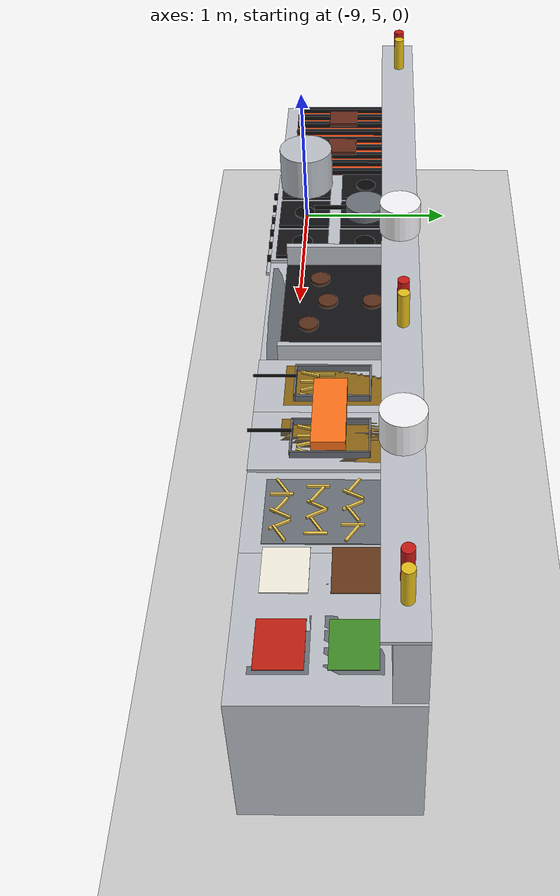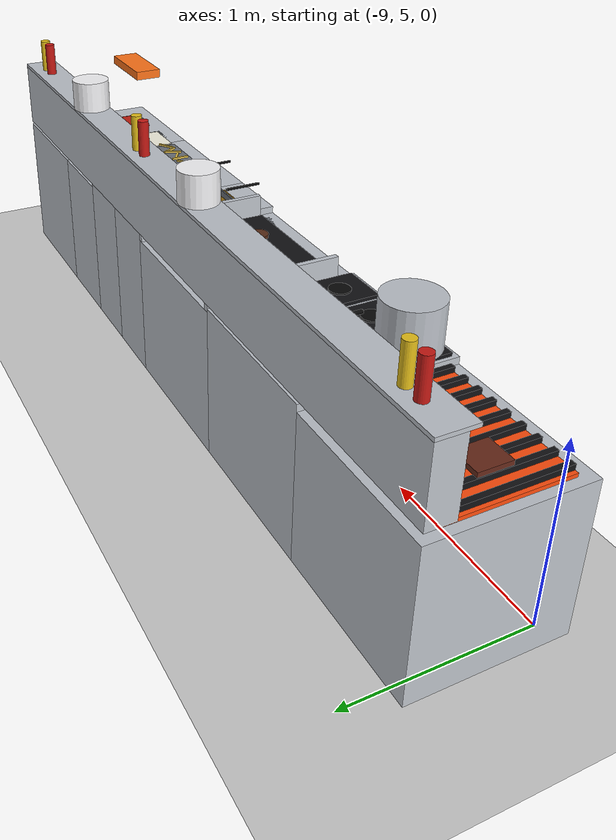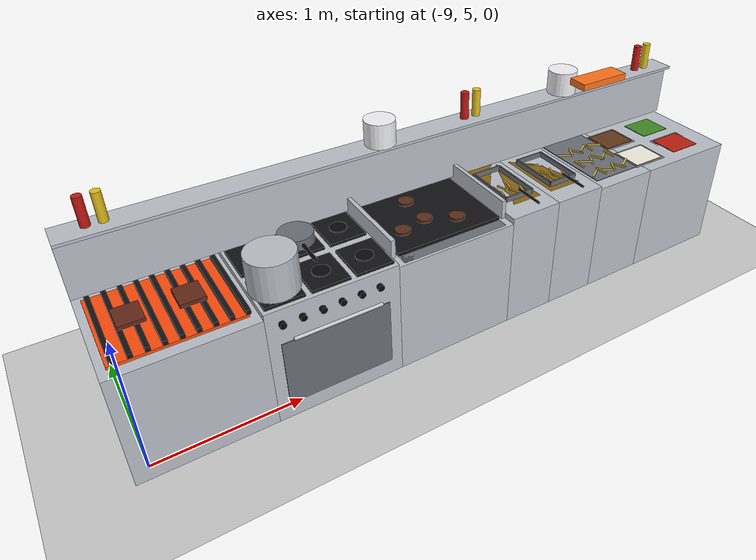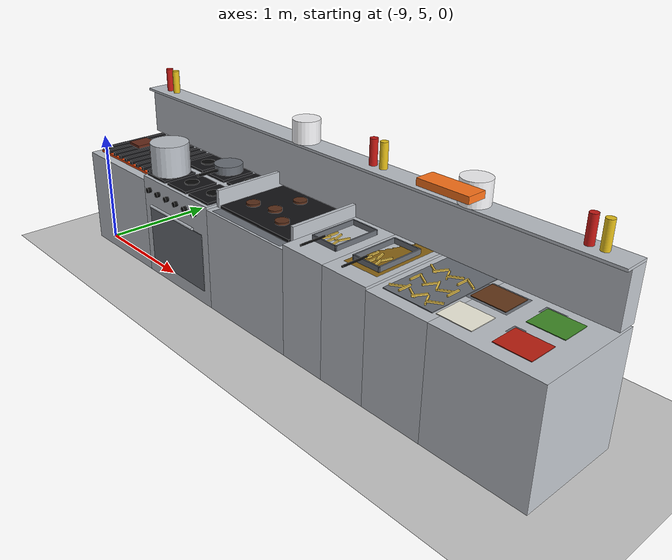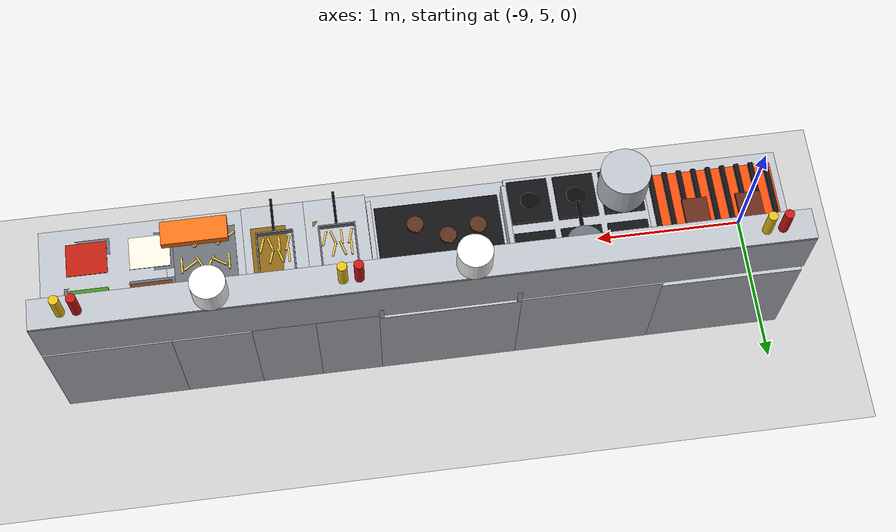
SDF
<sdf version="1.7">
 <world name="default">
  <model name="ground_plane">
   <static>1</static>
   <link name="link">
    <collision name="collision">
     <geometry><plane><normal>0 0 1</normal><size>100 100</size></plane></geometry>
     <surface><friction><ode><mu>100</mu><mu2>50</mu2></ode></friction></surface>
    </collision>
    <visual name="visual">
     <cast_shadows>0</cast_shadows>
     <geometry><plane><normal>0 0 1</normal><size>100 100</size></plane></geometry>
     <material>
      <script><uri>file://media/materials/scripts/gazebo.material</uri><name>Gazebo/Grey</name></script>
     </material>
    </visual>
   </link>
  </model>
  <model name="tunibot_layout">
   <static>1</static>
   <link name="k_line">
    <collision name="k_line_c0">
     <pose>-6.7 5.325 0.45 0 0 0</pose>
     <geometry><box><size>4.8 0.850 0.9</size></box></geometry>
    </collision>
    <visual name="k_line_v0">
     <pose>-8.650 5.325 0.420 0 0 0.0000</pose>
     <geometry><box><size>0.900 0.850 0.840</size></box></geometry>
     <material>
      <ambient>0.44 0.46 0.47 1</ambient>
      <diffuse>0.74 0.76 0.79 1</diffuse>
      <specular>0.70 0.70 0.70 1</specular>
     </material>
    </visual>
    <visual name="k_line_v1">
     <pose>-8.650 5.305 0.850 0 0 0.0000</pose>
     <geometry><box><size>0.800 0.650 0.020</size></box></geometry>
     <material>
      <ambient>0.60 0.18 0.03 1</ambient>
      <diffuse>1.00 0.30 0.05 1</diffuse>
      <specular>0.15 0.15 0.15 1</specular>
      <emissive>0.90 0.22 0.02 1</emissive>
     </material>
    </visual>
    <visual name="k_line_v2">
     <pose>-9.015 5.305 0.875 0 0 0.0000</pose>
     <geometry><box><size>0.030 0.650 0.030</size></box></geometry>
     <material>
      <ambient>0.04 0.04 0.05 1</ambient>
      <diffuse>0.07 0.07 0.08 1</diffuse>
      <specular>0.15 0.15 0.15 1</specular>
     </material>
    </visual>
    <visual name="k_line_v3">
     <pose>-8.920 5.305 0.875 0 0 0.0000</pose>
     <geometry><box><size>0.030 0.650 0.030</size></box></geometry>
     <material>
      <ambient>0.04 0.04 0.05 1</ambient>
      <diffuse>0.07 0.07 0.08 1</diffuse>
      <specular>0.15 0.15 0.15 1</specular>
     </material>
    </visual>
    <visual name="k_line_v4">
     <pose>-8.825 5.305 0.875 0 0 0.0000</pose>
     <geometry><box><size>0.030 0.650 0.030</size></box></geometry>
     <material>
      <ambient>0.04 0.04 0.05 1</ambient>
      <diffuse>0.07 0.07 0.08 1</diffuse>
      <specular>0.15 0.15 0.15 1</specular>
     </material>
    </visual>
    <visual name="k_line_v5">
     <pose>-8.730 5.305 0.875 0 0 0.0000</pose>
     <geometry><box><size>0.030 0.650 0.030</size></box></geometry>
     <material>
      <ambient>0.04 0.04 0.05 1</ambient>
      <diffuse>0.07 0.07 0.08 1</diffuse>
      <specular>0.15 0.15 0.15 1</specular>
     </material>
    </visual>
    <visual name="k_line_v6">
     <pose>-8.635 5.305 0.875 0 0 0.0000</pose>
     <geometry><box><size>0.030 0.650 0.030</size></box></geometry>
     <material>
      <ambient>0.04 0.04 0.05 1</ambient>
      <diffuse>0.07 0.07 0.08 1</diffuse>
      <specular>0.15 0.15 0.15 1</specular>
     </material>
    </visual>
    <visual name="k_line_v7">
     <pose>-8.540 5.305 0.875 0 0 0.0000</pose>
     <geometry><box><size>0.030 0.650 0.030</size></box></geometry>
     <material>
      <ambient>0.04 0.04 0.05 1</ambient>
      <diffuse>0.07 0.07 0.08 1</diffuse>
      <specular>0.15 0.15 0.15 1</specular>
     </material>
    </visual>
    <visual name="k_line_v8">
     <pose>-8.445 5.305 0.875 0 0 0.0000</pose>
     <geometry><box><size>0.030 0.650 0.030</size></box></geometry>
     <material>
      <ambient>0.04 0.04 0.05 1</ambient>
      <diffuse>0.07 0.07 0.08 1</diffuse>
      <specular>0.15 0.15 0.15 1</specular>
     </material>
    </visual>
    <visual name="k_line_v9">
     <pose>-8.350 5.305 0.875 0 0 0.0000</pose>
     <geometry><box><size>0.030 0.650 0.030</size></box></geometry>
     <material>
      <ambient>0.04 0.04 0.05 1</ambient>
      <diffuse>0.07 0.07 0.08 1</diffuse>
      <specular>0.15 0.15 0.15 1</specular>
     </material>
    </visual>
    <visual name="k_line_v10">
     <pose>-8.255 5.305 0.875 0 0 0.0000</pose>
     <geometry><box><size>0.030 0.650 0.030</size></box></geometry>
     <material>
      <ambient>0.04 0.04 0.05 1</ambient>
      <diffuse>0.07 0.07 0.08 1</diffuse>
      <specular>0.15 0.15 0.15 1</specular>
     </material>
    </visual>
    <visual name="k_line_v11">
     <pose>-8.850 5.290 0.903 0 0 0.0000</pose>
     <geometry><box><size>0.160 0.180 0.025</size></box></geometry>
     <material>
      <ambient>0.24 0.10 0.06 1</ambient>
      <diffuse>0.40 0.16 0.10 1</diffuse>
      <specular>0.15 0.15 0.15 1</specular>
     </material>
    </visual>
    <visual name="k_line_v12">
     <pose>-8.500 5.290 0.903 0 0 0.0000</pose>
     <geometry><box><size>0.160 0.180 0.025</size></box></geometry>
     <material>
      <ambient>0.24 0.10 0.06 1</ambient>
      <diffuse>0.40 0.16 0.10 1</diffuse>
      <specular>0.15 0.15 0.15 1</specular>
     </material>
    </visual>
    <visual name="k_line_v13">
     <pose>-7.750 5.325 0.440 0 0 0.0000</pose>
     <geometry><box><size>0.900 0.850 0.880</size></box></geometry>
     <material>
      <ambient>0.44 0.46 0.47 1</ambient>
      <diffuse>0.74 0.76 0.79 1</diffuse>
      <specular>0.70 0.70 0.70 1</specular>
     </material>
    </visual>
    <visual name="k_line_v14">
     <pose>-7.750 4.897 0.370 0 0 0.0000</pose>
     <geometry><box><size>0.740 0.006 0.500</size></box></geometry>
     <material>
      <ambient>0.25 0.26 0.28 1</ambient>
      <diffuse>0.42 0.44 0.47 1</diffuse>
      <specular>0.60 0.60 0.60 1</specular>
     </material>
    </visual>
    <visual name="k_line_v15">
     <pose>-7.750 4.860 0.660 0 1.5708 0</pose>
     <geometry><cylinder><radius>0.012</radius><length>0.600</length></cylinder></geometry>
     <material>
      <ambient>0.44 0.46 0.47 1</ambient>
      <diffuse>0.74 0.76 0.79 1</diffuse>
      <specular>0.90 0.90 0.90 1</specular>
     </material>
    </visual>
    <visual name="k_line_v16">
     <pose>-8.100 4.880 0.780 1.5708 0 0</pose>
     <geometry><cylinder><radius>0.022</radius><length>0.030</length></cylinder></geometry>
     <material>
      <ambient>0.02 0.02 0.02 1</ambient>
      <diffuse>0.03 0.03 0.03 1</diffuse>
      <specular>0.15 0.15 0.15 1</specular>
     </material>
    </visual>
    <visual name="k_line_v17">
     <pose>-7.970 4.880 0.780 1.5708 0 0</pose>
     <geometry><cylinder><radius>0.022</radius><length>0.030</length></cylinder></geometry>
     <material>
      <ambient>0.02 0.02 0.02 1</ambient>
      <diffuse>0.03 0.03 0.03 1</diffuse>
      <specular>0.15 0.15 0.15 1</specular>
     </material>
    </visual>
    <visual name="k_line_v18">
     <pose>-7.840 4.880 0.780 1.5708 0 0</pose>
     <geometry><cylinder><radius>0.022</radius><length>0.030</length></cylinder></geometry>
     <material>
      <ambient>0.02 0.02 0.02 1</ambient>
      <diffuse>0.03 0.03 0.03 1</diffuse>
      <specular>0.15 0.15 0.15 1</specular>
     </material>
    </visual>
    <visual name="k_line_v19">
     <pose>-7.710 4.880 0.780 1.5708 0 0</pose>
     <geometry><cylinder><radius>0.022</radius><length>0.030</length></cylinder></geometry>
     <material>
      <ambient>0.02 0.02 0.02 1</ambient>
      <diffuse>0.03 0.03 0.03 1</diffuse>
      <specular>0.15 0.15 0.15 1</specular>
     </material>
    </visual>
    <visual name="k_line_v20">
     <pose>-7.580 4.880 0.780 1.5708 0 0</pose>
     <geometry><cylinder><radius>0.022</radius><length>0.030</length></cylinder></geometry>
     <material>
      <ambient>0.02 0.02 0.02 1</ambient>
      <diffuse>0.03 0.03 0.03 1</diffuse>
      <specular>0.15 0.15 0.15 1</specular>
     </material>
    </visual>
    <visual name="k_line_v21">
     <pose>-7.450 4.880 0.780 1.5708 0 0</pose>
     <geometry><cylinder><radius>0.022</radius><length>0.030</length></cylinder></geometry>
     <material>
      <ambient>0.02 0.02 0.02 1</ambient>
      <diffuse>0.03 0.03 0.03 1</diffuse>
      <specular>0.15 0.15 0.15 1</specular>
     </material>
    </visual>
    <visual name="k_line_v22">
     <pose>-8.050 5.080 0.890 0 0 0.0000</pose>
     <geometry><box><size>0.260 0.300 0.020</size></box></geometry>
     <material>
      <ambient>0.04 0.04 0.05 1</ambient>
      <diffuse>0.07 0.07 0.08 1</diffuse>
      <specular>0.15 0.15 0.15 1</specular>
     </material>
    </visual>
    <visual name="k_line_v23">
     <pose>-8.050 5.080 0.904 0 0 0</pose>
     <geometry><cylinder><radius>0.060</radius><length>0.008</length></cylinder></geometry>
     <material>
      <ambient>0.12 0.24 0.60 1</ambient>
      <diffuse>0.20 0.40 1.00 1</diffuse>
      <specular>0.15 0.15 0.15 1</specular>
      <emissive>0.15 0.35 1.00 1</emissive>
     </material>
    </visual>
    <visual name="k_line_v24">
     <pose>-8.050 5.450 0.890 0 0 0.0000</pose>
     <geometry><box><size>0.260 0.300 0.020</size></box></geometry>
     <material>
      <ambient>0.04 0.04 0.05 1</ambient>
      <diffuse>0.07 0.07 0.08 1</diffuse>
      <specular>0.15 0.15 0.15 1</specular>
     </material>
    </visual>
    <visual name="k_line_v25">
     <pose>-8.050 5.450 0.904 0 0 0</pose>
     <geometry><cylinder><radius>0.060</radius><length>0.008</length></cylinder></geometry>
     <material>
      <ambient>0.02 0.02 0.02 1</ambient>
      <diffuse>0.03 0.03 0.03 1</diffuse>
      <specular>0.15 0.15 0.15 1</specular>
     </material>
    </visual>
    <visual name="k_line_v26">
     <pose>-7.750 5.080 0.890 0 0 0.0000</pose>
     <geometry><box><size>0.260 0.300 0.020</size></box></geometry>
     <material>
      <ambient>0.04 0.04 0.05 1</ambient>
      <diffuse>0.07 0.07 0.08 1</diffuse>
      <specular>0.15 0.15 0.15 1</specular>
     </material>
    </visual>
    <visual name="k_line_v27">
     <pose>-7.750 5.080 0.904 0 0 0</pose>
     <geometry><cylinder><radius>0.060</radius><length>0.008</length></cylinder></geometry>
     <material>
      <ambient>0.02 0.02 0.02 1</ambient>
      <diffuse>0.03 0.03 0.03 1</diffuse>
      <specular>0.15 0.15 0.15 1</specular>
     </material>
    </visual>
    <visual name="k_line_v28">
     <pose>-7.750 5.450 0.890 0 0 0.0000</pose>
     <geometry><box><size>0.260 0.300 0.020</size></box></geometry>
     <material>
      <ambient>0.04 0.04 0.05 1</ambient>
      <diffuse>0.07 0.07 0.08 1</diffuse>
      <specular>0.15 0.15 0.15 1</specular>
     </material>
    </visual>
    <visual name="k_line_v29">
     <pose>-7.750 5.450 0.904 0 0 0</pose>
     <geometry><cylinder><radius>0.060</radius><length>0.008</length></cylinder></geometry>
     <material>
      <ambient>0.12 0.24 0.60 1</ambient>
      <diffuse>0.20 0.40 1.00 1</diffuse>
      <specular>0.15 0.15 0.15 1</specular>
      <emissive>0.15 0.35 1.00 1</emissive>
     </material>
    </visual>
    <visual name="k_line_v30">
     <pose>-7.450 5.080 0.890 0 0 0.0000</pose>
     <geometry><box><size>0.260 0.300 0.020</size></box></geometry>
     <material>
      <ambient>0.04 0.04 0.05 1</ambient>
      <diffuse>0.07 0.07 0.08 1</diffuse>
      <specular>0.15 0.15 0.15 1</specular>
     </material>
    </visual>
    <visual name="k_line_v31">
     <pose>-7.450 5.080 0.904 0 0 0</pose>
     <geometry><cylinder><radius>0.060</radius><length>0.008</length></cylinder></geometry>
     <material>
      <ambient>0.02 0.02 0.02 1</ambient>
      <diffuse>0.03 0.03 0.03 1</diffuse>
      <specular>0.15 0.15 0.15 1</specular>
     </material>
    </visual>
    <visual name="k_line_v32">
     <pose>-7.450 5.450 0.890 0 0 0.0000</pose>
     <geometry><box><size>0.260 0.300 0.020</size></box></geometry>
     <material>
      <ambient>0.04 0.04 0.05 1</ambient>
      <diffuse>0.07 0.07 0.08 1</diffuse>
      <specular>0.15 0.15 0.15 1</specular>
     </material>
    </visual>
    <visual name="k_line_v33">
     <pose>-7.450 5.450 0.904 0 0 0</pose>
     <geometry><cylinder><radius>0.060</radius><length>0.008</length></cylinder></geometry>
     <material>
      <ambient>0.02 0.02 0.02 1</ambient>
      <diffuse>0.03 0.03 0.03 1</diffuse>
      <specular>0.15 0.15 0.15 1</specular>
     </material>
    </visual>
    <visual name="k_line_v34">
     <pose>-8.050 5.080 1.040 0 0 0</pose>
     <geometry><cylinder><radius>0.160</radius><length>0.260</length></cylinder></geometry>
     <material>
      <ambient>0.44 0.46 0.47 1</ambient>
      <diffuse>0.74 0.76 0.79 1</diffuse>
      <specular>0.90 0.90 0.90 1</specular>
     </material>
    </visual>
    <visual name="k_line_v35">
     <pose>-7.750 5.450 0.945 0 0 0</pose>
     <geometry><cylinder><radius>0.120</radius><length>0.070</length></cylinder></geometry>
     <material>
      <ambient>0.25 0.26 0.28 1</ambient>
      <diffuse>0.42 0.44 0.47 1</diffuse>
      <specular>0.80 0.80 0.80 1</specular>
     </material>
    </visual>
    <visual name="k_line_v36">
     <pose>-7.750 5.250 0.945 1.5708 0 0</pose>
     <geometry><cylinder><radius>0.012</radius><length>0.220</length></cylinder></geometry>
     <material>
      <ambient>0.02 0.02 0.02 1</ambient>
      <diffuse>0.03 0.03 0.03 1</diffuse>
      <specular>0.15 0.15 0.15 1</specular>
     </material>
    </visual>
    <visual name="k_line_v37">
     <pose>-6.850 5.325 0.430 0 0 0.0000</pose>
     <geometry><box><size>0.900 0.850 0.860</size></box></geometry>
     <material>
      <ambient>0.44 0.46 0.47 1</ambient>
      <diffuse>0.74 0.76 0.79 1</diffuse>
      <specular>0.70 0.70 0.70 1</specular>
     </material>
    </visual>
    <visual name="k_line_v38">
     <pose>-6.850 5.350 0.873 0 0 0.0000</pose>
     <geometry><box><size>0.800 0.700 0.025</size></box></geometry>
     <material>
      <ambient>0.04 0.04 0.05 1</ambient>
      <diffuse>0.07 0.07 0.08 1</diffuse>
      <specular>0.50 0.50 0.50 1</specular>
     </material>
    </visual>
    <visual name="k_line_v39">
     <pose>-6.850 4.960 0.850 0 0 0.0000</pose>
     <geometry><box><size>0.800 0.080 0.020</size></box></geometry>
     <material>
      <ambient>0.25 0.26 0.28 1</ambient>
      <diffuse>0.42 0.44 0.47 1</diffuse>
      <specular>0.15 0.15 0.15 1</specular>
     </material>
    </visual>
    <visual name="k_line_v40">
     <pose>-7.285 5.375 0.930 0 0 0.0000</pose>
     <geometry><box><size>0.030 0.750 0.140</size></box></geometry>
     <material>
      <ambient>0.44 0.46 0.47 1</ambient>
      <diffuse>0.74 0.76 0.79 1</diffuse>
      <specular>0.15 0.15 0.15 1</specular>
     </material>
    </visual>
    <visual name="k_line_v41">
     <pose>-6.415 5.375 0.930 0 0 0.0000</pose>
     <geometry><box><size>0.030 0.750 0.140</size></box></geometry>
     <material>
      <ambient>0.44 0.46 0.47 1</ambient>
      <diffuse>0.74 0.76 0.79 1</diffuse>
      <specular>0.15 0.15 0.15 1</specular>
     </material>
    </visual>
    <visual name="k_line_v42">
     <pose>-7.100 5.200 0.895 0 0 0</pose>
     <geometry><cylinder><radius>0.055</radius><length>0.020</length></cylinder></geometry>
     <material>
      <ambient>0.21 0.11 0.06 1</ambient>
      <diffuse>0.35 0.18 0.10 1</diffuse>
      <specular>0.15 0.15 0.15 1</specular>
     </material>
    </visual>
    <visual name="k_line_v43">
     <pose>-6.900 5.250 0.895 0 0 0</pose>
     <geometry><cylinder><radius>0.055</radius><length>0.020</length></cylinder></geometry>
     <material>
      <ambient>0.21 0.11 0.06 1</ambient>
      <diffuse>0.35 0.18 0.10 1</diffuse>
      <specular>0.15 0.15 0.15 1</specular>
     </material>
    </visual>
    <visual name="k_line_v44">
     <pose>-6.700 5.150 0.895 0 0 0</pose>
     <geometry><cylinder><radius>0.055</radius><length>0.020</length></cylinder></geometry>
     <material>
      <ambient>0.21 0.11 0.06 1</ambient>
      <diffuse>0.35 0.18 0.10 1</diffuse>
      <specular>0.15 0.15 0.15 1</specular>
     </material>
    </visual>
    <visual name="k_line_v45">
     <pose>-6.900 5.500 0.895 0 0 0</pose>
     <geometry><cylinder><radius>0.055</radius><length>0.020</length></cylinder></geometry>
     <material>
      <ambient>0.21 0.11 0.06 1</ambient>
      <diffuse>0.35 0.18 0.10 1</diffuse>
      <specular>0.15 0.15 0.15 1</specular>
     </material>
    </visual>
    <visual name="k_line_v46">
     <pose>-6.200 5.325 0.450 0 0 0.0000</pose>
     <geometry><box><size>0.400 0.850 0.900</size></box></geometry>
     <material>
      <ambient>0.44 0.46 0.47 1</ambient>
      <diffuse>0.74 0.76 0.79 1</diffuse>
      <specular>0.70 0.70 0.70 1</specular>
     </material>
    </visual>
    <visual name="k_line_v47">
     <pose>-6.200 5.325 0.895 0 0 0.0000</pose>
     <geometry><box><size>0.300 0.550 0.010</size></box></geometry>
     <material>
      <ambient>0.33 0.24 0.05 1</ambient>
      <diffuse>0.55 0.40 0.08 1</diffuse>
      <specular>0.15 0.15 0.15 1</specular>
      <emissive>0.25 0.17 0.00 1</emissive>
     </material>
    </visual>
    <visual name="k_line_v48">
     <pose>-6.200 5.105 0.905 0 0 0.0000</pose>
     <geometry><box><size>0.240 0.010 0.070</size></box></geometry>
     <material>
      <ambient>0.25 0.26 0.28 1</ambient>
      <diffuse>0.42 0.44 0.47 1</diffuse>
      <specular>0.40 0.40 0.40 1</specular>
     </material>
    </visual>
    <visual name="k_line_v49">
     <pose>-6.200 5.495 0.905 0 0 0.0000</pose>
     <geometry><box><size>0.240 0.010 0.070</size></box></geometry>
     <material>
      <ambient>0.25 0.26 0.28 1</ambient>
      <diffuse>0.42 0.44 0.47 1</diffuse>
      <specular>0.40 0.40 0.40 1</specular>
     </material>
    </visual>
    <visual name="k_line_v50">
     <pose>-6.315 5.300 0.905 0 0 0.0000</pose>
     <geometry><box><size>0.010 0.400 0.070</size></box></geometry>
     <material>
      <ambient>0.25 0.26 0.28 1</ambient>
      <diffuse>0.42 0.44 0.47 1</diffuse>
      <specular>0.40 0.40 0.40 1</specular>
     </material>
    </visual>
    <visual name="k_line_v51">
     <pose>-6.085 5.300 0.905 0 0 0.0000</pose>
     <geometry><box><size>0.010 0.400 0.070</size></box></geometry>
     <material>
      <ambient>0.25 0.26 0.28 1</ambient>
      <diffuse>0.42 0.44 0.47 1</diffuse>
      <specular>0.40 0.40 0.40 1</specular>
     </material>
    </visual>
    <visual name="k_line_v52">
     <pose>-6.280 5.180 0.906 0 0 -0.3000</pose>
     <geometry><box><size>0.012 0.100 0.012</size></box></geometry>
     <material>
      <ambient>0.56 0.47 0.18 1</ambient>
      <diffuse>0.93 0.78 0.30 1</diffuse>
      <specular>0.15 0.15 0.15 1</specular>
     </material>
    </visual>
    <visual name="k_line_v53">
     <pose>-6.225 5.180 0.906 0 0 0.0000</pose>
     <geometry><box><size>0.012 0.100 0.012</size></box></geometry>
     <material>
      <ambient>0.56 0.47 0.18 1</ambient>
      <diffuse>0.93 0.78 0.30 1</diffuse>
      <specular>0.15 0.15 0.15 1</specular>
     </material>
    </visual>
    <visual name="k_line_v54">
     <pose>-6.170 5.180 0.906 0 0 0.3000</pose>
     <geometry><box><size>0.012 0.100 0.012</size></box></geometry>
     <material>
      <ambient>0.56 0.47 0.18 1</ambient>
      <diffuse>0.93 0.78 0.30 1</diffuse>
      <specular>0.15 0.15 0.15 1</specular>
     </material>
    </visual>
    <visual name="k_line_v55">
     <pose>-6.115 5.180 0.906 0 0 -0.3000</pose>
     <geometry><box><size>0.012 0.100 0.012</size></box></geometry>
     <material>
      <ambient>0.56 0.47 0.18 1</ambient>
      <diffuse>0.93 0.78 0.30 1</diffuse>
      <specular>0.15 0.15 0.15 1</specular>
     </material>
    </visual>
    <visual name="k_line_v56">
     <pose>-6.280 5.260 0.906 0 0 0.0000</pose>
     <geometry><box><size>0.012 0.100 0.012</size></box></geometry>
     <material>
      <ambient>0.56 0.47 0.18 1</ambient>
      <diffuse>0.93 0.78 0.30 1</diffuse>
      <specular>0.15 0.15 0.15 1</specular>
     </material>
    </visual>
    <visual name="k_line_v57">
     <pose>-6.225 5.260 0.906 0 0 0.3000</pose>
     <geometry><box><size>0.012 0.100 0.012</size></box></geometry>
     <material>
      <ambient>0.56 0.47 0.18 1</ambient>
      <diffuse>0.93 0.78 0.30 1</diffuse>
      <specular>0.15 0.15 0.15 1</specular>
     </material>
    </visual>
    <visual name="k_line_v58">
     <pose>-6.170 5.260 0.906 0 0 -0.3000</pose>
     <geometry><box><size>0.012 0.100 0.012</size></box></geometry>
     <material>
      <ambient>0.56 0.47 0.18 1</ambient>
      <diffuse>0.93 0.78 0.30 1</diffuse>
      <specular>0.15 0.15 0.15 1</specular>
     </material>
    </visual>
    <visual name="k_line_v59">
     <pose>-6.200 5.000 0.970 1.5708 0 0</pose>
     <geometry><cylinder><radius>0.008</radius><length>0.220</length></cylinder></geometry>
     <material>
      <ambient>0.02 0.02 0.02 1</ambient>
      <diffuse>0.03 0.03 0.03 1</diffuse>
      <specular>0.15 0.15 0.15 1</specular>
     </material>
    </visual>
    <visual name="k_line_v60">
     <pose>-5.800 5.325 0.450 0 0 0.0000</pose>
     <geometry><box><size>0.400 0.850 0.900</size></box></geometry>
     <material>
      <ambient>0.44 0.46 0.47 1</ambient>
      <diffuse>0.74 0.76 0.79 1</diffuse>
      <specular>0.70 0.70 0.70 1</specular>
     </material>
    </visual>
    <visual name="k_line_v61">
     <pose>-5.800 5.325 0.895 0 0 0.0000</pose>
     <geometry><box><size>0.300 0.550 0.010</size></box></geometry>
     <material>
      <ambient>0.33 0.24 0.05 1</ambient>
      <diffuse>0.55 0.40 0.08 1</diffuse>
      <specular>0.15 0.15 0.15 1</specular>
      <emissive>0.25 0.17 0.00 1</emissive>
     </material>
    </visual>
    <visual name="k_line_v62">
     <pose>-5.800 5.105 0.905 0 0 0.0000</pose>
     <geometry><box><size>0.240 0.010 0.070</size></box></geometry>
     <material>
      <ambient>0.25 0.26 0.28 1</ambient>
      <diffuse>0.42 0.44 0.47 1</diffuse>
      <specular>0.40 0.40 0.40 1</specular>
     </material>
    </visual>
    <visual name="k_line_v63">
     <pose>-5.800 5.495 0.905 0 0 0.0000</pose>
     <geometry><box><size>0.240 0.010 0.070</size></box></geometry>
     <material>
      <ambient>0.25 0.26 0.28 1</ambient>
      <diffuse>0.42 0.44 0.47 1</diffuse>
      <specular>0.40 0.40 0.40 1</specular>
     </material>
    </visual>
    <visual name="k_line_v64">
     <pose>-5.915 5.300 0.905 0 0 0.0000</pose>
     <geometry><box><size>0.010 0.400 0.070</size></box></geometry>
     <material>
      <ambient>0.25 0.26 0.28 1</ambient>
      <diffuse>0.42 0.44 0.47 1</diffuse>
      <specular>0.40 0.40 0.40 1</specular>
     </material>
    </visual>
    <visual name="k_line_v65">
     <pose>-5.685 5.300 0.905 0 0 0.0000</pose>
     <geometry><box><size>0.010 0.400 0.070</size></box></geometry>
     <material>
      <ambient>0.25 0.26 0.28 1</ambient>
      <diffuse>0.42 0.44 0.47 1</diffuse>
      <specular>0.40 0.40 0.40 1</specular>
     </material>
    </visual>
    <visual name="k_line_v66">
     <pose>-5.880 5.180 0.906 0 0 -0.3000</pose>
     <geometry><box><size>0.012 0.100 0.012</size></box></geometry>
     <material>
      <ambient>0.56 0.47 0.18 1</ambient>
      <diffuse>0.93 0.78 0.30 1</diffuse>
      <specular>0.15 0.15 0.15 1</specular>
     </material>
    </visual>
    <visual name="k_line_v67">
     <pose>-5.825 5.180 0.906 0 0 0.0000</pose>
     <geometry><box><size>0.012 0.100 0.012</size></box></geometry>
     <material>
      <ambient>0.56 0.47 0.18 1</ambient>
      <diffuse>0.93 0.78 0.30 1</diffuse>
      <specular>0.15 0.15 0.15 1</specular>
     </material>
    </visual>
    <visual name="k_line_v68">
     <pose>-5.770 5.180 0.906 0 0 0.3000</pose>
     <geometry><box><size>0.012 0.100 0.012</size></box></geometry>
     <material>
      <ambient>0.56 0.47 0.18 1</ambient>
      <diffuse>0.93 0.78 0.30 1</diffuse>
      <specular>0.15 0.15 0.15 1</specular>
     </material>
    </visual>
    <visual name="k_line_v69">
     <pose>-5.715 5.180 0.906 0 0 -0.3000</pose>
     <geometry><box><size>0.012 0.100 0.012</size></box></geometry>
     <material>
      <ambient>0.56 0.47 0.18 1</ambient>
      <diffuse>0.93 0.78 0.30 1</diffuse>
      <specular>0.15 0.15 0.15 1</specular>
     </material>
    </visual>
    <visual name="k_line_v70">
     <pose>-5.880 5.260 0.906 0 0 0.0000</pose>
     <geometry><box><size>0.012 0.100 0.012</size></box></geometry>
     <material>
      <ambient>0.56 0.47 0.18 1</ambient>
      <diffuse>0.93 0.78 0.30 1</diffuse>
      <specular>0.15 0.15 0.15 1</specular>
     </material>
    </visual>
    <visual name="k_line_v71">
     <pose>-5.825 5.260 0.906 0 0 0.3000</pose>
     <geometry><box><size>0.012 0.100 0.012</size></box></geometry>
     <material>
      <ambient>0.56 0.47 0.18 1</ambient>
      <diffuse>0.93 0.78 0.30 1</diffuse>
      <specular>0.15 0.15 0.15 1</specular>
     </material>
    </visual>
    <visual name="k_line_v72">
     <pose>-5.770 5.260 0.906 0 0 -0.3000</pose>
     <geometry><box><size>0.012 0.100 0.012</size></box></geometry>
     <material>
      <ambient>0.56 0.47 0.18 1</ambient>
      <diffuse>0.93 0.78 0.30 1</diffuse>
      <specular>0.15 0.15 0.15 1</specular>
     </material>
    </visual>
    <visual name="k_line_v73">
     <pose>-5.800 5.000 0.970 1.5708 0 0</pose>
     <geometry><cylinder><radius>0.008</radius><length>0.220</length></cylinder></geometry>
     <material>
      <ambient>0.02 0.02 0.02 1</ambient>
      <diffuse>0.03 0.03 0.03 1</diffuse>
      <specular>0.15 0.15 0.15 1</specular>
     </material>
    </visual>
    <visual name="k_line_v74">
     <pose>-5.350 5.325 0.440 0 0 0.0000</pose>
     <geometry><box><size>0.500 0.850 0.880</size></box></geometry>
     <material>
      <ambient>0.44 0.46 0.47 1</ambient>
      <diffuse>0.74 0.76 0.79 1</diffuse>
      <specular>0.70 0.70 0.70 1</specular>
     </material>
    </visual>
    <visual name="k_line_v75">
     <pose>-5.350 5.325 0.873 0 0 0.0000</pose>
     <geometry><box><size>0.400 0.650 0.025</size></box></geometry>
     <material>
      <ambient>0.25 0.26 0.28 1</ambient>
      <diffuse>0.42 0.44 0.47 1</diffuse>
      <specular>0.80 0.80 0.80 1</specular>
     </material>
    </visual>
    <visual name="k_line_v76">
     <pose>-5.500 5.080 0.891 0 0 -1.0000</pose>
     <geometry><box><size>0.012 0.110 0.012</size></box></geometry>
     <material>
      <ambient>0.56 0.47 0.18 1</ambient>
      <diffuse>0.93 0.78 0.30 1</diffuse>
      <specular>0.15 0.15 0.15 1</specular>
     </material>
    </visual>
    <visual name="k_line_v77">
     <pose>-5.440 5.080 0.901 0 0 0.0000</pose>
     <geometry><box><size>0.012 0.110 0.012</size></box></geometry>
     <material>
      <ambient>0.56 0.47 0.18 1</ambient>
      <diffuse>0.93 0.78 0.30 1</diffuse>
      <specular>0.15 0.15 0.15 1</specular>
     </material>
    </visual>
    <visual name="k_line_v78">
     <pose>-5.380 5.080 0.891 0 0 1.0000</pose>
     <geometry><box><size>0.012 0.110 0.012</size></box></geometry>
     <material>
      <ambient>0.56 0.47 0.18 1</ambient>
      <diffuse>0.93 0.78 0.30 1</diffuse>
      <specular>0.15 0.15 0.15 1</specular>
     </material>
    </visual>
    <visual name="k_line_v79">
     <pose>-5.320 5.080 0.901 0 0 -0.5000</pose>
     <geometry><box><size>0.012 0.110 0.012</size></box></geometry>
     <material>
      <ambient>0.56 0.47 0.18 1</ambient>
      <diffuse>0.93 0.78 0.30 1</diffuse>
      <specular>0.15 0.15 0.15 1</specular>
     </material>
    </visual>
    <visual name="k_line_v80">
     <pose>-5.260 5.080 0.891 0 0 0.5000</pose>
     <geometry><box><size>0.012 0.110 0.012</size></box></geometry>
     <material>
      <ambient>0.56 0.47 0.18 1</ambient>
      <diffuse>0.93 0.78 0.30 1</diffuse>
      <specular>0.15 0.15 0.15 1</specular>
     </material>
    </visual>
    <visual name="k_line_v81">
     <pose>-5.200 5.080 0.901 0 0 -1.0000</pose>
     <geometry><box><size>0.012 0.110 0.012</size></box></geometry>
     <material>
      <ambient>0.56 0.47 0.18 1</ambient>
      <diffuse>0.93 0.78 0.30 1</diffuse>
      <specular>0.15 0.15 0.15 1</specular>
     </material>
    </visual>
    <visual name="k_line_v82">
     <pose>-5.500 5.250 0.891 0 0 0.0000</pose>
     <geometry><box><size>0.012 0.110 0.012</size></box></geometry>
     <material>
      <ambient>0.56 0.47 0.18 1</ambient>
      <diffuse>0.93 0.78 0.30 1</diffuse>
      <specular>0.15 0.15 0.15 1</specular>
     </material>
    </visual>
    <visual name="k_line_v83">
     <pose>-5.440 5.250 0.901 0 0 1.0000</pose>
     <geometry><box><size>0.012 0.110 0.012</size></box></geometry>
     <material>
      <ambient>0.56 0.47 0.18 1</ambient>
      <diffuse>0.93 0.78 0.30 1</diffuse>
      <specular>0.15 0.15 0.15 1</specular>
     </material>
    </visual>
    <visual name="k_line_v84">
     <pose>-5.380 5.250 0.891 0 0 -0.5000</pose>
     <geometry><box><size>0.012 0.110 0.012</size></box></geometry>
     <material>
      <ambient>0.56 0.47 0.18 1</ambient>
      <diffuse>0.93 0.78 0.30 1</diffuse>
      <specular>0.15 0.15 0.15 1</specular>
     </material>
    </visual>
    <visual name="k_line_v85">
     <pose>-5.320 5.250 0.901 0 0 0.5000</pose>
     <geometry><box><size>0.012 0.110 0.012</size></box></geometry>
     <material>
      <ambient>0.56 0.47 0.18 1</ambient>
      <diffuse>0.93 0.78 0.30 1</diffuse>
      <specular>0.15 0.15 0.15 1</specular>
     </material>
    </visual>
    <visual name="k_line_v86">
     <pose>-5.260 5.250 0.891 0 0 -1.0000</pose>
     <geometry><box><size>0.012 0.110 0.012</size></box></geometry>
     <material>
      <ambient>0.56 0.47 0.18 1</ambient>
      <diffuse>0.93 0.78 0.30 1</diffuse>
      <specular>0.15 0.15 0.15 1</specular>
     </material>
    </visual>
    <visual name="k_line_v87">
     <pose>-5.200 5.250 0.901 0 0 0.0000</pose>
     <geometry><box><size>0.012 0.110 0.012</size></box></geometry>
     <material>
      <ambient>0.56 0.47 0.18 1</ambient>
      <diffuse>0.93 0.78 0.30 1</diffuse>
      <specular>0.15 0.15 0.15 1</specular>
     </material>
    </visual>
    <visual name="k_line_v88">
     <pose>-5.500 5.420 0.891 0 0 1.0000</pose>
     <geometry><box><size>0.012 0.110 0.012</size></box></geometry>
     <material>
      <ambient>0.56 0.47 0.18 1</ambient>
      <diffuse>0.93 0.78 0.30 1</diffuse>
      <specular>0.15 0.15 0.15 1</specular>
     </material>
    </visual>
    <visual name="k_line_v89">
     <pose>-5.440 5.420 0.901 0 0 -0.5000</pose>
     <geometry><box><size>0.012 0.110 0.012</size></box></geometry>
     <material>
      <ambient>0.56 0.47 0.18 1</ambient>
      <diffuse>0.93 0.78 0.30 1</diffuse>
      <specular>0.15 0.15 0.15 1</specular>
     </material>
    </visual>
    <visual name="k_line_v90">
     <pose>-5.380 5.420 0.891 0 0 0.5000</pose>
     <geometry><box><size>0.012 0.110 0.012</size></box></geometry>
     <material>
      <ambient>0.56 0.47 0.18 1</ambient>
      <diffuse>0.93 0.78 0.30 1</diffuse>
      <specular>0.15 0.15 0.15 1</specular>
     </material>
    </visual>
    <visual name="k_line_v91">
     <pose>-5.320 5.420 0.901 0 0 -1.0000</pose>
     <geometry><box><size>0.012 0.110 0.012</size></box></geometry>
     <material>
      <ambient>0.56 0.47 0.18 1</ambient>
      <diffuse>0.93 0.78 0.30 1</diffuse>
      <specular>0.15 0.15 0.15 1</specular>
     </material>
    </visual>
    <visual name="k_line_v92">
     <pose>-5.260 5.420 0.891 0 0 0.0000</pose>
     <geometry><box><size>0.012 0.110 0.012</size></box></geometry>
     <material>
      <ambient>0.56 0.47 0.18 1</ambient>
      <diffuse>0.93 0.78 0.30 1</diffuse>
      <specular>0.15 0.15 0.15 1</specular>
     </material>
    </visual>
    <visual name="k_line_v93">
     <pose>-5.200 5.420 0.901 0 0 1.0000</pose>
     <geometry><box><size>0.012 0.110 0.012</size></box></geometry>
     <material>
      <ambient>0.56 0.47 0.18 1</ambient>
      <diffuse>0.93 0.78 0.30 1</diffuse>
      <specular>0.15 0.15 0.15 1</specular>
     </material>
    </visual>
    <visual name="k_line_v94">
     <pose>-5.350 5.325 1.525 0 0 0.0000</pose>
     <geometry><box><size>0.400 0.150 0.050</size></box></geometry>
     <material>
      <ambient>0.60 0.27 0.06 1</ambient>
      <diffuse>1.00 0.45 0.10 1</diffuse>
      <specular>0.15 0.15 0.15 1</specular>
      <emissive>1.00 0.35 0.05 1</emissive>
     </material>
    </visual>
    <visual name="k_line_v95">
     <pose>-4.700 5.325 0.440 0 0 0.0000</pose>
     <geometry><box><size>0.800 0.850 0.880</size></box></geometry>
     <material>
      <ambient>0.44 0.46 0.47 1</ambient>
      <diffuse>0.74 0.76 0.79 1</diffuse>
      <specular>0.70 0.70 0.70 1</specular>
     </material>
    </visual>
    <visual name="k_line_v96">
     <pose>-5.000 5.120 0.870 0 0 0.0000</pose>
     <geometry><box><size>0.300 0.260 0.020</size></box></geometry>
     <material>
      <ambient>0.25 0.26 0.28 1</ambient>
      <diffuse>0.42 0.44 0.47 1</diffuse>
      <specular>0.15 0.15 0.15 1</specular>
     </material>
    </visual>
    <visual name="k_line_v97">
     <pose>-5.000 5.120 0.883 0 0 0.0000</pose>
     <geometry><box><size>0.260 0.220 0.005</size></box></geometry>
     <material>
      <ambient>0.58 0.57 0.53 1</ambient>
      <diffuse>0.96 0.95 0.88 1</diffuse>
      <specular>0.15 0.15 0.15 1</specular>
     </material>
    </visual>
    <visual name="k_line_v98">
     <pose>-4.600 5.120 0.870 0 0 0.0000</pose>
     <geometry><box><size>0.300 0.260 0.020</size></box></geometry>
     <material>
      <ambient>0.25 0.26 0.28 1</ambient>
      <diffuse>0.42 0.44 0.47 1</diffuse>
      <specular>0.15 0.15 0.15 1</specular>
     </material>
    </visual>
    <visual name="k_line_v99">
     <pose>-4.600 5.120 0.883 0 0 0.0000</pose>
     <geometry><box><size>0.260 0.220 0.005</size></box></geometry>
     <material>
      <ambient>0.45 0.07 0.04 1</ambient>
      <diffuse>0.75 0.12 0.06 1</diffuse>
      <specular>0.15 0.15 0.15 1</specular>
     </material>
    </visual>
    <visual name="k_line_v100">
     <pose>-5.000 5.440 0.870 0 0 0.0000</pose>
     <geometry><box><size>0.300 0.260 0.020</size></box></geometry>
     <material>
      <ambient>0.25 0.26 0.28 1</ambient>
      <diffuse>0.42 0.44 0.47 1</diffuse>
      <specular>0.15 0.15 0.15 1</specular>
     </material>
    </visual>
    <visual name="k_line_v101">
     <pose>-5.000 5.440 0.883 0 0 0.0000</pose>
     <geometry><box><size>0.260 0.220 0.005</size></box></geometry>
     <material>
      <ambient>0.24 0.13 0.06 1</ambient>
      <diffuse>0.40 0.22 0.10 1</diffuse>
      <specular>0.15 0.15 0.15 1</specular>
     </material>
    </visual>
    <visual name="k_line_v102">
     <pose>-4.600 5.440 0.870 0 0 0.0000</pose>
     <geometry><box><size>0.300 0.260 0.020</size></box></geometry>
     <material>
      <ambient>0.25 0.26 0.28 1</ambient>
      <diffuse>0.42 0.44 0.47 1</diffuse>
      <specular>0.15 0.15 0.15 1</specular>
     </material>
    </visual>
    <visual name="k_line_v103">
     <pose>-4.600 5.440 0.883 0 0 0.0000</pose>
     <geometry><box><size>0.260 0.220 0.005</size></box></geometry>
     <material>
      <ambient>0.15 0.33 0.09 1</ambient>
      <diffuse>0.25 0.55 0.15 1</diffuse>
      <specular>0.15 0.15 0.15 1</specular>
     </material>
    </visual>
    <visual name="k_line_v104">
     <pose>-6.700 5.675 1.100 0 0 0.0000</pose>
     <geometry><box><size>4.800 0.150 0.400</size></box></geometry>
     <material>
      <ambient>0.44 0.46 0.47 1</ambient>
      <diffuse>0.74 0.76 0.79 1</diffuse>
      <specular>0.70 0.70 0.70 1</specular>
     </material>
    </visual>
    <visual name="k_line_v105">
     <pose>-6.700 5.650 1.310 0 0 0.0000</pose>
     <geometry><box><size>4.800 0.200 0.020</size></box></geometry>
     <material>
      <ambient>0.44 0.46 0.47 1</ambient>
      <diffuse>0.74 0.76 0.79 1</diffuse>
      <specular>0.80 0.80 0.80 1</specular>
     </material>
    </visual>
    <visual name="k_line_v106">
     <pose>-8.900 5.660 1.420 0 0 0</pose>
     <geometry><cylinder><radius>0.030</radius><length>0.200</length></cylinder></geometry>
     <material>
      <ambient>0.47 0.06 0.05 1</ambient>
      <diffuse>0.78 0.10 0.08 1</diffuse>
      <specular>0.15 0.15 0.15 1</specular>
     </material>
    </visual>
    <visual name="k_line_v107">
     <pose>-8.800 5.660 1.420 0 0 0</pose>
     <geometry><cylinder><radius>0.030</radius><length>0.200</length></cylinder></geometry>
     <material>
      <ambient>0.54 0.45 0.06 1</ambient>
      <diffuse>0.90 0.75 0.10 1</diffuse>
      <specular>0.15 0.15 0.15 1</specular>
     </material>
    </visual>
    <visual name="k_line_v108">
     <pose>-6.300 5.660 1.420 0 0 0</pose>
     <geometry><cylinder><radius>0.030</radius><length>0.200</length></cylinder></geometry>
     <material>
      <ambient>0.47 0.06 0.05 1</ambient>
      <diffuse>0.78 0.10 0.08 1</diffuse>
      <specular>0.15 0.15 0.15 1</specular>
     </material>
    </visual>
    <visual name="k_line_v109">
     <pose>-6.200 5.660 1.420 0 0 0</pose>
     <geometry><cylinder><radius>0.030</radius><length>0.200</length></cylinder></geometry>
     <material>
      <ambient>0.54 0.45 0.06 1</ambient>
      <diffuse>0.90 0.75 0.10 1</diffuse>
      <specular>0.15 0.15 0.15 1</specular>
     </material>
    </visual>
    <visual name="k_line_v110">
     <pose>-4.600 5.660 1.420 0 0 0</pose>
     <geometry><cylinder><radius>0.030</radius><length>0.200</length></cylinder></geometry>
     <material>
      <ambient>0.47 0.06 0.05 1</ambient>
      <diffuse>0.78 0.10 0.08 1</diffuse>
      <specular>0.15 0.15 0.15 1</specular>
     </material>
    </visual>
    <visual name="k_line_v111">
     <pose>-4.500 5.660 1.420 0 0 0</pose>
     <geometry><cylinder><radius>0.030</radius><length>0.200</length></cylinder></geometry>
     <material>
      <ambient>0.54 0.45 0.06 1</ambient>
      <diffuse>0.90 0.75 0.10 1</diffuse>
      <specular>0.15 0.15 0.15 1</specular>
     </material>
    </visual>
    <visual name="k_line_v112">
     <pose>-7.000 5.650 1.410 0 0 0</pose>
     <geometry><cylinder><radius>0.110</radius><length>0.180</length></cylinder></geometry>
     <material>
      <ambient>0.58 0.58 0.59 1</ambient>
      <diffuse>0.97 0.97 0.98 1</diffuse>
      <specular>0.60 0.60 0.60 1</specular>
     </material>
    </visual>
    <visual name="k_line_v113">
     <pose>-5.400 5.650 1.410 0 0 0</pose>
     <geometry><cylinder><radius>0.110</radius><length>0.180</length></cylinder></geometry>
     <material>
      <ambient>0.58 0.58 0.59 1</ambient>
      <diffuse>0.97 0.97 0.98 1</diffuse>
      <specular>0.60 0.60 0.60 1</specular>
     </material>
    </visual>
   </link>
  </model>
 </world>
</sdf>
